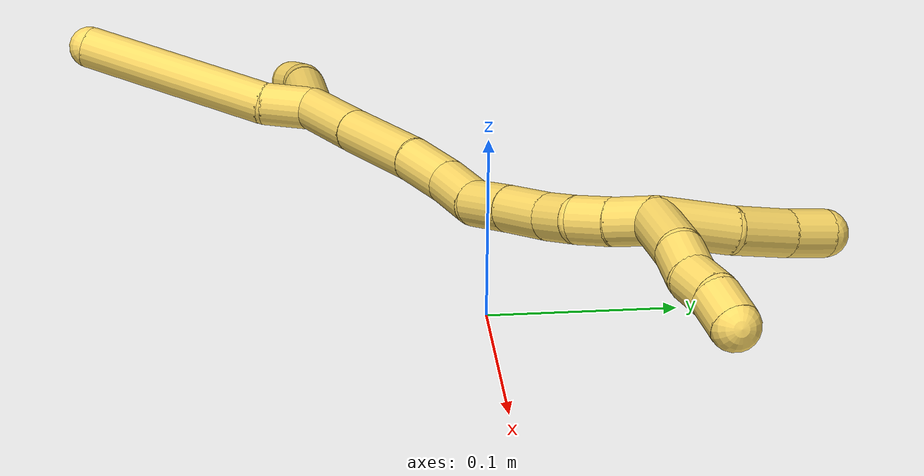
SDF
<sdf version="1.7">
 <world name="default">
  <model name="5">
   <static>0</static>
   <link name="5">
    <collision name="collision-cylinder-e_1_2_8">
     <pose>-0.01367 0.000795 0.005167 -0.152728 -1.20551 0.105213</pose>
     <geometry><cylinder><radius>0.0125</radius><length>0.029271</length></cylinder></geometry>
     <surface>
      <friction><ode><mu>1.16</mu><mu2>1.16</mu2><slip1>0</slip1><slip2>0</slip2></ode></friction>
      <contact><ode><kp>1e+06</kp><kd>1</kd><max_vel>0</max_vel><min_depth>0.001</min_depth></ode></contact>
     </surface>
    </collision>
    <visual name="visual-cylinder-e_1_2_8">
     <pose>-0.01367 0.000795 0.005167 -0.152728 -1.20551 0.105213</pose>
     <geometry><cylinder><radius>0.0125</radius><length>0.029271</length></cylinder></geometry>
     <material><ambient>1 0.858824 0.4 1</ambient></material>
    </visual>
    <collision name="collision-cylinder-e_2_8_6">
     <pose>-0.080444 -0.00688 0.037758 0.299608 -1.07529 -0.179502</pose>
     <geometry><cylinder><radius>0.0125</radius><length>0.120729</length></cylinder></geometry>
     <surface>
      <friction><ode><mu>1.16</mu><mu2>1.16</mu2><slip1>0</slip1><slip2>0</slip2></ode></friction>
      <contact><ode><kp>1e+06</kp><kd>1</kd><max_vel>0</max_vel><min_depth>0.001</min_depth></ode></contact>
     </surface>
    </collision>
    <visual name="visual-cylinder-e_2_8_6">
     <pose>-0.080444 -0.00688 0.037758 0.299608 -1.07529 -0.179502</pose>
     <geometry><cylinder><radius>0.0125</radius><length>0.120729</length></cylinder></geometry>
     <material><ambient>1 0.858824 0.4 1</ambient></material>
    </visual>
    <collision name="collision-cylinder-e_1_2_9">
     <pose>-0.000441 -0.005087 0.028628 0.175839 -0.01518 -0.001338</pose>
     <geometry><cylinder><radius>0.0125</radius><length>0.05816</length></cylinder></geometry>
     <surface>
      <friction><ode><mu>1.16</mu><mu2>1.16</mu2><slip1>0</slip1><slip2>0</slip2></ode></friction>
      <contact><ode><kp>1e+06</kp><kd>1</kd><max_vel>0</max_vel><min_depth>0.001</min_depth></ode></contact>
     </surface>
    </collision>
    <visual name="visual-cylinder-e_1_2_9">
     <pose>-0.000441 -0.005087 0.028628 0.175839 -0.01518 -0.001338</pose>
     <geometry><cylinder><radius>0.0125</radius><length>0.05816</length></cylinder></geometry>
     <material><ambient>1 0.858824 0.4 1</ambient></material>
    </visual>
    <collision name="collision-cylinder-e_2_9_10">
     <pose>-0.000651 -0.010733 0.067691 0.053566 0.022227 0.000595</pose>
     <geometry><cylinder><radius>0.0125</radius><length>0.020904</length></cylinder></geometry>
     <surface>
      <friction><ode><mu>1.16</mu><mu2>1.16</mu2><slip1>0</slip1><slip2>0</slip2></ode></friction>
      <contact><ode><kp>1e+06</kp><kd>1</kd><max_vel>0</max_vel><min_depth>0.001</min_depth></ode></contact>
     </surface>
    </collision>
    <visual name="visual-cylinder-e_2_9_10">
     <pose>-0.000651 -0.010733 0.067691 0.053566 0.022227 0.000595</pose>
     <geometry><cylinder><radius>0.0125</radius><length>0.020904</length></cylinder></geometry>
     <material><ambient>1 0.858824 0.4 1</ambient></material>
    </visual>
    <collision name="collision-cylinder-e_3_10_5">
     <pose>-0.003123 -0.011242 0.088238 -0.004975 -0.261331 0.000654</pose>
     <geometry><cylinder><radius>0.0125</radius><length>0.020935</length></cylinder></geometry>
     <surface>
      <friction><ode><mu>1.16</mu><mu2>1.16</mu2><slip1>0</slip1><slip2>0</slip2></ode></friction>
      <contact><ode><kp>1e+06</kp><kd>1</kd><max_vel>0</max_vel><min_depth>0.001</min_depth></ode></contact>
     </surface>
    </collision>
    <visual name="visual-cylinder-e_3_10_5">
     <pose>-0.003123 -0.011242 0.088238 -0.004975 -0.261331 0.000654</pose>
     <geometry><cylinder><radius>0.0125</radius><length>0.020935</length></cylinder></geometry>
     <material><ambient>1 0.858824 0.4 1</ambient></material>
    </visual>
    <collision name="collision-cylinder-e_1_2_11">
     <pose>0.011027 0.003806 -0.021622 -2.96736 0.465454 -2.43552</pose>
     <geometry><cylinder><radius>0.0125</radius><length>0.049135</length></cylinder></geometry>
     <surface>
      <friction><ode><mu>1.16</mu><mu2>1.16</mu2><slip1>0</slip1><slip2>0</slip2></ode></friction>
      <contact><ode><kp>1e+06</kp><kd>1</kd><max_vel>0</max_vel><min_depth>0.001</min_depth></ode></contact>
     </surface>
    </collision>
    <visual name="visual-cylinder-e_1_2_11">
     <pose>0.011027 0.003806 -0.021622 -2.96736 0.465454 -2.43552</pose>
     <geometry><cylinder><radius>0.0125</radius><length>0.049135</length></cylinder></geometry>
     <material><ambient>1 0.858824 0.4 1</ambient></material>
    </visual>
    <collision name="collision-cylinder-e_2_11_12">
     <pose>0.036219 0.011928 -0.068386 -2.97158 0.506904 -2.50595</pose>
     <geometry><cylinder><radius>0.0125</radius><length>0.058359</length></cylinder></geometry>
     <surface>
      <friction><ode><mu>1.16</mu><mu2>1.16</mu2><slip1>0</slip1><slip2>0</slip2></ode></friction>
      <contact><ode><kp>1e+06</kp><kd>1</kd><max_vel>0</max_vel><min_depth>0.001</min_depth></ode></contact>
     </surface>
    </collision>
    <visual name="visual-cylinder-e_2_11_12">
     <pose>0.036219 0.011928 -0.068386 -2.97158 0.506904 -2.50595</pose>
     <geometry><cylinder><radius>0.0125</radius><length>0.058359</length></cylinder></geometry>
     <material><ambient>1 0.858824 0.4 1</ambient></material>
    </visual>
    <collision name="collision-cylinder-e_3_12_13">
     <pose>0.058903 0.020222 -0.10744 -2.86307 0.53207 -2.1914</pose>
     <geometry><cylinder><radius>0.0125</radius><length>0.03358</length></cylinder></geometry>
     <surface>
      <friction><ode><mu>1.16</mu><mu2>1.16</mu2><slip1>0</slip1><slip2>0</slip2></ode></friction>
      <contact><ode><kp>1e+06</kp><kd>1</kd><max_vel>0</max_vel><min_depth>0.001</min_depth></ode></contact>
     </surface>
    </collision>
    <visual name="visual-cylinder-e_3_12_13">
     <pose>0.058903 0.020222 -0.10744 -2.86307 0.53207 -2.1914</pose>
     <geometry><cylinder><radius>0.0125</radius><length>0.03358</length></cylinder></geometry>
     <material><ambient>1 0.858824 0.4 1</ambient></material>
    </visual>
    <collision name="collision-cylinder-e_4_13_14">
     <pose>0.073026 0.02785 -0.135461 -2.88848 0.367161 -1.94003</pose>
     <geometry><cylinder><radius>0.0125</radius><length>0.03123</length></cylinder></geometry>
     <surface>
      <friction><ode><mu>1.16</mu><mu2>1.16</mu2><slip1>0</slip1><slip2>0</slip2></ode></friction>
      <contact><ode><kp>1e+06</kp><kd>1</kd><max_vel>0</max_vel><min_depth>0.001</min_depth></ode></contact>
     </surface>
    </collision>
    <visual name="visual-cylinder-e_4_13_14">
     <pose>0.073026 0.02785 -0.135461 -2.88848 0.367161 -1.94003</pose>
     <geometry><cylinder><radius>0.0125</radius><length>0.03123</length></cylinder></geometry>
     <material><ambient>1 0.858824 0.4 1</ambient></material>
    </visual>
    <collision name="collision-cylinder-e_5_14_15">
     <pose>0.085694 0.030801 -0.162713 3.08849 0.492545 2.93106</pose>
     <geometry><cylinder><radius>0.0125</radius><length>0.029871</length></cylinder></geometry>
     <surface>
      <friction><ode><mu>1.16</mu><mu2>1.16</mu2><slip1>0</slip1><slip2>0</slip2></ode></friction>
      <contact><ode><kp>1e+06</kp><kd>1</kd><max_vel>0</max_vel><min_depth>0.001</min_depth></ode></contact>
     </surface>
    </collision>
    <visual name="visual-cylinder-e_5_14_15">
     <pose>0.085694 0.030801 -0.162713 3.08849 0.492545 2.93106</pose>
     <geometry><cylinder><radius>0.0125</radius><length>0.029871</length></cylinder></geometry>
     <material><ambient>1 0.858824 0.4 1</ambient></material>
    </visual>
    <collision name="collision-cylinder-e_6_15_16">
     <pose>0.100687 0.029737 -0.189484 3.11476 0.526802 3.04217</pose>
     <geometry><cylinder><radius>0.0125</radius><length>0.031546</length></cylinder></geometry>
     <surface>
      <friction><ode><mu>1.16</mu><mu2>1.16</mu2><slip1>0</slip1><slip2>0</slip2></ode></friction>
      <contact><ode><kp>1e+06</kp><kd>1</kd><max_vel>0</max_vel><min_depth>0.001</min_depth></ode></contact>
     </surface>
    </collision>
    <visual name="visual-cylinder-e_6_15_16">
     <pose>0.100687 0.029737 -0.189484 3.11476 0.526802 3.04217</pose>
     <geometry><cylinder><radius>0.0125</radius><length>0.031546</length></cylinder></geometry>
     <material><ambient>1 0.858824 0.4 1</ambient></material>
    </visual>
    <collision name="collision-cylinder-e_7_16_17">
     <pose>0.113542 0.028504 -0.212524 3.04979 0.480465 2.77088</pose>
     <geometry><cylinder><radius>0.0125</radius><length>0.021313</length></cylinder></geometry>
     <surface>
      <friction><ode><mu>1.16</mu><mu2>1.16</mu2><slip1>0</slip1><slip2>0</slip2></ode></friction>
      <contact><ode><kp>1e+06</kp><kd>1</kd><max_vel>0</max_vel><min_depth>0.001</min_depth></ode></contact>
     </surface>
    </collision>
    <visual name="visual-cylinder-e_7_16_17">
     <pose>0.113542 0.028504 -0.212524 3.04979 0.480465 2.77088</pose>
     <geometry><cylinder><radius>0.0125</radius><length>0.021313</length></cylinder></geometry>
     <material><ambient>1 0.858824 0.4 1</ambient></material>
    </visual>
    <collision name="collision-cylinder-e_8_17_18">
     <pose>0.126086 0.026336 -0.229419 2.96927 0.786813 2.73123</pose>
     <geometry><cylinder><radius>0.0125</radius><length>0.021518</length></cylinder></geometry>
     <surface>
      <friction><ode><mu>1.16</mu><mu2>1.16</mu2><slip1>0</slip1><slip2>0</slip2></ode></friction>
      <contact><ode><kp>1e+06</kp><kd>1</kd><max_vel>0</max_vel><min_depth>0.001</min_depth></ode></contact>
     </surface>
    </collision>
    <visual name="visual-cylinder-e_8_17_18">
     <pose>0.126086 0.026336 -0.229419 2.96927 0.786813 2.73123</pose>
     <geometry><cylinder><radius>0.0125</radius><length>0.021518</length></cylinder></geometry>
     <material><ambient>1 0.858824 0.4 1</ambient></material>
    </visual>
    <collision name="collision-cylinder-e_9_18_1">
     <pose>0.142266 0.022738 -0.244577 2.85097 0.818669 2.49092</pose>
     <geometry><cylinder><radius>0.0125</radius><length>0.023447</length></cylinder></geometry>
     <surface>
      <friction><ode><mu>1.16</mu><mu2>1.16</mu2><slip1>0</slip1><slip2>0</slip2></ode></friction>
      <contact><ode><kp>1e+06</kp><kd>1</kd><max_vel>0</max_vel><min_depth>0.001</min_depth></ode></contact>
     </surface>
    </collision>
    <visual name="visual-cylinder-e_9_18_1">
     <pose>0.142266 0.022738 -0.244577 2.85097 0.818669 2.49092</pose>
     <geometry><cylinder><radius>0.0125</radius><length>0.023447</length></cylinder></geometry>
     <material><ambient>1 0.858824 0.4 1</ambient></material>
    </visual>
    <collision name="collision-cylinder-e_1_1_19">
     <pose>0.153199 0.025734 -0.2705 -2.85938 0.124207 -0.825245</pose>
     <geometry><cylinder><radius>0.0125</radius><length>0.038297</length></cylinder></geometry>
     <surface>
      <friction><ode><mu>1.16</mu><mu2>1.16</mu2><slip1>0</slip1><slip2>0</slip2></ode></friction>
      <contact><ode><kp>1e+06</kp><kd>1</kd><max_vel>0</max_vel><min_depth>0.001</min_depth></ode></contact>
     </surface>
    </collision>
    <visual name="visual-cylinder-e_1_1_19">
     <pose>0.153199 0.025734 -0.2705 -2.85938 0.124207 -0.825245</pose>
     <geometry><cylinder><radius>0.0125</radius><length>0.038297</length></cylinder></geometry>
     <material><ambient>1 0.858824 0.4 1</ambient></material>
    </visual>
    <collision name="collision-cylinder-e_2_19_20">
     <pose>0.157163 0.035954 -0.297651 -2.63599 0.155176 -0.584656</pose>
     <geometry><cylinder><radius>0.0125</radius><length>0.020598</length></cylinder></geometry>
     <surface>
      <friction><ode><mu>1.16</mu><mu2>1.16</mu2><slip1>0</slip1><slip2>0</slip2></ode></friction>
      <contact><ode><kp>1e+06</kp><kd>1</kd><max_vel>0</max_vel><min_depth>0.001</min_depth></ode></contact>
     </surface>
    </collision>
    <visual name="visual-cylinder-e_2_19_20">
     <pose>0.157163 0.035954 -0.297651 -2.63599 0.155176 -0.584656</pose>
     <geometry><cylinder><radius>0.0125</radius><length>0.020598</length></cylinder></geometry>
     <material><ambient>1 0.858824 0.4 1</ambient></material>
    </visual>
    <collision name="collision-cylinder-e_3_20_21">
     <pose>0.162356 0.043758 -0.315885 -2.84263 0.353347 -1.74012</pose>
     <geometry><cylinder><radius>0.0125</radius><length>0.020814</length></cylinder></geometry>
     <surface>
      <friction><ode><mu>1.16</mu><mu2>1.16</mu2><slip1>0</slip1><slip2>0</slip2></ode></friction>
      <contact><ode><kp>1e+06</kp><kd>1</kd><max_vel>0</max_vel><min_depth>0.001</min_depth></ode></contact>
     </surface>
    </collision>
    <visual name="visual-cylinder-e_3_20_21">
     <pose>0.162356 0.043758 -0.315885 -2.84263 0.353347 -1.74012</pose>
     <geometry><cylinder><radius>0.0125</radius><length>0.020814</length></cylinder></geometry>
     <material><ambient>1 0.858824 0.4 1</ambient></material>
    </visual>
    <collision name="collision-cylinder-e_4_21_4">
     <pose>0.169103 0.051717 -0.333413 -2.58655 0.315204 -1.01772</pose>
     <geometry><cylinder><radius>0.0125</radius><length>0.02029</length></cylinder></geometry>
     <surface>
      <friction><ode><mu>1.16</mu><mu2>1.16</mu2><slip1>0</slip1><slip2>0</slip2></ode></friction>
      <contact><ode><kp>1e+06</kp><kd>1</kd><max_vel>0</max_vel><min_depth>0.001</min_depth></ode></contact>
     </surface>
    </collision>
    <visual name="visual-cylinder-e_4_21_4">
     <pose>0.169103 0.051717 -0.333413 -2.58655 0.315204 -1.01772</pose>
     <geometry><cylinder><radius>0.0125</radius><length>0.02029</length></cylinder></geometry>
     <material><ambient>1 0.858824 0.4 1</ambient></material>
    </visual>
    <collision name="collision-cylinder-e_1_1_22">
     <pose>0.171247 0.020526 -0.248979 -0.025556 1.41189 -0.021786</pose>
     <geometry><cylinder><radius>0.0125</radius><length>0.041361</length></cylinder></geometry>
     <surface>
      <friction><ode><mu>1.16</mu><mu2>1.16</mu2><slip1>0</slip1><slip2>0</slip2></ode></friction>
      <contact><ode><kp>1e+06</kp><kd>1</kd><max_vel>0</max_vel><min_depth>0.001</min_depth></ode></contact>
     </surface>
    </collision>
    <visual name="visual-cylinder-e_1_1_22">
     <pose>0.171247 0.020526 -0.248979 -0.025556 1.41189 -0.021786</pose>
     <geometry><cylinder><radius>0.0125</radius><length>0.041361</length></cylinder></geometry>
     <material><ambient>1 0.858824 0.4 1</ambient></material>
    </visual>
    <collision name="collision-cylinder-e_2_22_23">
     <pose>0.207528 0.01995 -0.239133 0.100009 1.1761 0.06671</pose>
     <geometry><cylinder><radius>0.0125</radius><length>0.034366</length></cylinder></geometry>
     <surface>
      <friction><ode><mu>1.16</mu><mu2>1.16</mu2><slip1>0</slip1><slip2>0</slip2></ode></friction>
      <contact><ode><kp>1e+06</kp><kd>1</kd><max_vel>0</max_vel><min_depth>0.001</min_depth></ode></contact>
     </surface>
    </collision>
    <visual name="visual-cylinder-e_2_22_23">
     <pose>0.207528 0.01995 -0.239133 0.100009 1.1761 0.06671</pose>
     <geometry><cylinder><radius>0.0125</radius><length>0.034366</length></cylinder></geometry>
     <material><ambient>1 0.858824 0.4 1</ambient></material>
    </visual>
    <collision name="collision-cylinder-e_3_23_3">
     <pose>0.234852 0.018168 -0.22873 0.285126 1.23584 0.203341</pose>
     <geometry><cylinder><radius>0.0125</radius><length>0.024273</length></cylinder></geometry>
     <surface>
      <friction><ode><mu>1.16</mu><mu2>1.16</mu2><slip1>0</slip1><slip2>0</slip2></ode></friction>
      <contact><ode><kp>1e+06</kp><kd>1</kd><max_vel>0</max_vel><min_depth>0.001</min_depth></ode></contact>
     </surface>
    </collision>
    <visual name="visual-cylinder-e_3_23_3">
     <pose>0.234852 0.018168 -0.22873 0.285126 1.23584 0.203341</pose>
     <geometry><cylinder><radius>0.0125</radius><length>0.024273</length></cylinder></geometry>
     <material><ambient>1 0.858824 0.4 1</ambient></material>
    </visual>
    <collision name="collision-sphere-3">
     <pose>0.246314 0.017046 -0.224901 0 -0 0</pose>
     <geometry><sphere><radius>0.0125</radius></sphere></geometry>
     <surface>
      <friction><ode><mu>1.16</mu><mu2>1.16</mu2><slip1>0</slip1><slip2>0</slip2></ode></friction>
      <contact><ode><kp>1e+06</kp><kd>1</kd><max_vel>0</max_vel><min_depth>0.001</min_depth></ode></contact>
     </surface>
    </collision>
    <visual name="visual-sphere-3">
     <pose>0.246314 0.017046 -0.224901 0 -0 0</pose>
     <geometry><sphere><radius>0.0125</radius></sphere></geometry>
     <material><ambient>1 0.858824 0.4 1</ambient></material>
    </visual>
    <collision name="collision-sphere-23">
     <pose>0.22339 0.019291 -0.232559 0 -0 0</pose>
     <geometry><sphere><radius>0.0125</radius></sphere></geometry>
     <surface>
      <friction><ode><mu>1.16</mu><mu2>1.16</mu2><slip1>0</slip1><slip2>0</slip2></ode></friction>
      <contact><ode><kp>1e+06</kp><kd>1</kd><max_vel>0</max_vel><min_depth>0.001</min_depth></ode></contact>
     </surface>
    </collision>
    <visual name="visual-sphere-23">
     <pose>0.22339 0.019291 -0.232559 0 -0 0</pose>
     <geometry><sphere><radius>0.0125</radius></sphere></geometry>
     <material><ambient>1 0.858824 0.4 1</ambient></material>
    </visual>
    <collision name="collision-sphere-22">
     <pose>0.191667 0.02061 -0.245707 0 -0 0</pose>
     <geometry><sphere><radius>0.0125</radius></sphere></geometry>
     <surface>
      <friction><ode><mu>1.16</mu><mu2>1.16</mu2><slip1>0</slip1><slip2>0</slip2></ode></friction>
      <contact><ode><kp>1e+06</kp><kd>1</kd><max_vel>0</max_vel><min_depth>0.001</min_depth></ode></contact>
     </surface>
    </collision>
    <visual name="visual-sphere-22">
     <pose>0.191667 0.02061 -0.245707 0 -0 0</pose>
     <geometry><sphere><radius>0.0125</radius></sphere></geometry>
     <material><ambient>1 0.858824 0.4 1</ambient></material>
    </visual>
    <collision name="collision-sphere-4">
     <pose>0.172248 0.0568 -0.34161 0 -0 0</pose>
     <geometry><sphere><radius>0.0125</radius></sphere></geometry>
     <surface>
      <friction><ode><mu>1.16</mu><mu2>1.16</mu2><slip1>0</slip1><slip2>0</slip2></ode></friction>
      <contact><ode><kp>1e+06</kp><kd>1</kd><max_vel>0</max_vel><min_depth>0.001</min_depth></ode></contact>
     </surface>
    </collision>
    <visual name="visual-sphere-4">
     <pose>0.172248 0.0568 -0.34161 0 -0 0</pose>
     <geometry><sphere><radius>0.0125</radius></sphere></geometry>
     <material><ambient>1 0.858824 0.4 1</ambient></material>
    </visual>
    <collision name="collision-sphere-21">
     <pose>0.165958 0.046634 -0.325216 0 -0 0</pose>
     <geometry><sphere><radius>0.0125</radius></sphere></geometry>
     <surface>
      <friction><ode><mu>1.16</mu><mu2>1.16</mu2><slip1>0</slip1><slip2>0</slip2></ode></friction>
      <contact><ode><kp>1e+06</kp><kd>1</kd><max_vel>0</max_vel><min_depth>0.001</min_depth></ode></contact>
     </surface>
    </collision>
    <visual name="visual-sphere-21">
     <pose>0.165958 0.046634 -0.325216 0 -0 0</pose>
     <geometry><sphere><radius>0.0125</radius></sphere></geometry>
     <material><ambient>1 0.858824 0.4 1</ambient></material>
    </visual>
    <collision name="collision-sphere-20">
     <pose>0.158755 0.040882 -0.306554 0 -0 0</pose>
     <geometry><sphere><radius>0.0125</radius></sphere></geometry>
     <surface>
      <friction><ode><mu>1.16</mu><mu2>1.16</mu2><slip1>0</slip1><slip2>0</slip2></ode></friction>
      <contact><ode><kp>1e+06</kp><kd>1</kd><max_vel>0</max_vel><min_depth>0.001</min_depth></ode></contact>
     </surface>
    </collision>
    <visual name="visual-sphere-20">
     <pose>0.158755 0.040882 -0.306554 0 -0 0</pose>
     <geometry><sphere><radius>0.0125</radius></sphere></geometry>
     <material><ambient>1 0.858824 0.4 1</ambient></material>
    </visual>
    <collision name="collision-sphere-5">
     <pose>-0.005827 -0.011191 0.09835 0 -0 0</pose>
     <geometry><sphere><radius>0.0125</radius></sphere></geometry>
     <surface>
      <friction><ode><mu>1.16</mu><mu2>1.16</mu2><slip1>0</slip1><slip2>0</slip2></ode></friction>
      <contact><ode><kp>1e+06</kp><kd>1</kd><max_vel>0</max_vel><min_depth>0.001</min_depth></ode></contact>
     </surface>
    </collision>
    <visual name="visual-sphere-5">
     <pose>-0.005827 -0.011191 0.09835 0 -0 0</pose>
     <geometry><sphere><radius>0.0125</radius></sphere></geometry>
     <material><ambient>1 0.858824 0.4 1</ambient></material>
    </visual>
    <collision name="collision-sphere-10">
     <pose>-0.000418 -0.011292 0.078126 0 -0 0</pose>
     <geometry><sphere><radius>0.0125</radius></sphere></geometry>
     <surface>
      <friction><ode><mu>1.16</mu><mu2>1.16</mu2><slip1>0</slip1><slip2>0</slip2></ode></friction>
      <contact><ode><kp>1e+06</kp><kd>1</kd><max_vel>0</max_vel><min_depth>0.001</min_depth></ode></contact>
     </surface>
    </collision>
    <visual name="visual-sphere-10">
     <pose>-0.000418 -0.011292 0.078126 0 -0 0</pose>
     <geometry><sphere><radius>0.0125</radius></sphere></geometry>
     <material><ambient>1 0.858824 0.4 1</ambient></material>
    </visual>
    <collision name="collision-sphere-6">
     <pose>-0.133549 -0.015352 0.065181 0 -0 0</pose>
     <geometry><sphere><radius>0.0125</radius></sphere></geometry>
     <surface>
      <friction><ode><mu>1.16</mu><mu2>1.16</mu2><slip1>0</slip1><slip2>0</slip2></ode></friction>
      <contact><ode><kp>1e+06</kp><kd>1</kd><max_vel>0</max_vel><min_depth>0.001</min_depth></ode></contact>
     </surface>
    </collision>
    <visual name="visual-sphere-6">
     <pose>-0.133549 -0.015352 0.065181 0 -0 0</pose>
     <geometry><sphere><radius>0.0125</radius></sphere></geometry>
     <material><ambient>1 0.858824 0.4 1</ambient></material>
    </visual>
    <collision name="collision-sphere-9">
     <pose>-0.000883 -0.010173 0.057257 0 -0 0</pose>
     <geometry><sphere><radius>0.0125</radius></sphere></geometry>
     <surface>
      <friction><ode><mu>1.16</mu><mu2>1.16</mu2><slip1>0</slip1><slip2>0</slip2></ode></friction>
      <contact><ode><kp>1e+06</kp><kd>1</kd><max_vel>0</max_vel><min_depth>0.001</min_depth></ode></contact>
     </surface>
    </collision>
    <visual name="visual-sphere-9">
     <pose>-0.000883 -0.010173 0.057257 0 -0 0</pose>
     <geometry><sphere><radius>0.0125</radius></sphere></geometry>
     <material><ambient>1 0.858824 0.4 1</ambient></material>
    </visual>
    <collision name="collision-sphere-2">
     <geometry><sphere><radius>0.0125</radius></sphere></geometry>
     <surface>
      <friction><ode><mu>1.16</mu><mu2>1.16</mu2><slip1>0</slip1><slip2>0</slip2></ode></friction>
      <contact><ode><kp>1e+06</kp><kd>1</kd><max_vel>0</max_vel><min_depth>0.001</min_depth></ode></contact>
     </surface>
    </collision>
    <visual name="visual-sphere-2">
     <geometry><sphere><radius>0.0125</radius></sphere></geometry>
     <material><ambient>1 0.858824 0.4 1</ambient></material>
    </visual>
    <collision name="collision-sphere-19">
     <pose>0.155571 0.031026 -0.288749 0 -0 0</pose>
     <geometry><sphere><radius>0.0125</radius></sphere></geometry>
     <surface>
      <friction><ode><mu>1.16</mu><mu2>1.16</mu2><slip1>0</slip1><slip2>0</slip2></ode></friction>
      <contact><ode><kp>1e+06</kp><kd>1</kd><max_vel>0</max_vel><min_depth>0.001</min_depth></ode></contact>
     </surface>
    </collision>
    <visual name="visual-sphere-19">
     <pose>0.155571 0.031026 -0.288749 0 -0 0</pose>
     <geometry><sphere><radius>0.0125</radius></sphere></geometry>
     <material><ambient>1 0.858824 0.4 1</ambient></material>
    </visual>
    <collision name="collision-sphere-8">
     <pose>-0.02734 0.001591 0.010334 0 -0 0</pose>
     <geometry><sphere><radius>0.0125</radius></sphere></geometry>
     <surface>
      <friction><ode><mu>1.16</mu><mu2>1.16</mu2><slip1>0</slip1><slip2>0</slip2></ode></friction>
      <contact><ode><kp>1e+06</kp><kd>1</kd><max_vel>0</max_vel><min_depth>0.001</min_depth></ode></contact>
     </surface>
    </collision>
    <visual name="visual-sphere-8">
     <pose>-0.02734 0.001591 0.010334 0 -0 0</pose>
     <geometry><sphere><radius>0.0125</radius></sphere></geometry>
     <material><ambient>1 0.858824 0.4 1</ambient></material>
    </visual>
    <collision name="collision-sphere-11">
     <pose>0.022053 0.007611 -0.043243 0 -0 0</pose>
     <geometry><sphere><radius>0.0125</radius></sphere></geometry>
     <surface>
      <friction><ode><mu>1.16</mu><mu2>1.16</mu2><slip1>0</slip1><slip2>0</slip2></ode></friction>
      <contact><ode><kp>1e+06</kp><kd>1</kd><max_vel>0</max_vel><min_depth>0.001</min_depth></ode></contact>
     </surface>
    </collision>
    <visual name="visual-sphere-11">
     <pose>0.022053 0.007611 -0.043243 0 -0 0</pose>
     <geometry><sphere><radius>0.0125</radius></sphere></geometry>
     <material><ambient>1 0.858824 0.4 1</ambient></material>
    </visual>
    <collision name="collision-sphere-12">
     <pose>0.050385 0.016244 -0.093528 0 -0 0</pose>
     <geometry><sphere><radius>0.0125</radius></sphere></geometry>
     <surface>
      <friction><ode><mu>1.16</mu><mu2>1.16</mu2><slip1>0</slip1><slip2>0</slip2></ode></friction>
      <contact><ode><kp>1e+06</kp><kd>1</kd><max_vel>0</max_vel><min_depth>0.001</min_depth></ode></contact>
     </surface>
    </collision>
    <visual name="visual-sphere-12">
     <pose>0.050385 0.016244 -0.093528 0 -0 0</pose>
     <geometry><sphere><radius>0.0125</radius></sphere></geometry>
     <material><ambient>1 0.858824 0.4 1</ambient></material>
    </visual>
    <collision name="collision-sphere-13">
     <pose>0.067421 0.0242 -0.121351 0 -0 0</pose>
     <geometry><sphere><radius>0.0125</radius></sphere></geometry>
     <surface>
      <friction><ode><mu>1.16</mu><mu2>1.16</mu2><slip1>0</slip1><slip2>0</slip2></ode></friction>
      <contact><ode><kp>1e+06</kp><kd>1</kd><max_vel>0</max_vel><min_depth>0.001</min_depth></ode></contact>
     </surface>
    </collision>
    <visual name="visual-sphere-13">
     <pose>0.067421 0.0242 -0.121351 0 -0 0</pose>
     <geometry><sphere><radius>0.0125</radius></sphere></geometry>
     <material><ambient>1 0.858824 0.4 1</ambient></material>
    </visual>
    <collision name="collision-sphere-14">
     <pose>0.078632 0.031499 -0.149571 0 -0 0</pose>
     <geometry><sphere><radius>0.0125</radius></sphere></geometry>
     <surface>
      <friction><ode><mu>1.16</mu><mu2>1.16</mu2><slip1>0</slip1><slip2>0</slip2></ode></friction>
      <contact><ode><kp>1e+06</kp><kd>1</kd><max_vel>0</max_vel><min_depth>0.001</min_depth></ode></contact>
     </surface>
    </collision>
    <visual name="visual-sphere-14">
     <pose>0.078632 0.031499 -0.149571 0 -0 0</pose>
     <geometry><sphere><radius>0.0125</radius></sphere></geometry>
     <material><ambient>1 0.858824 0.4 1</ambient></material>
    </visual>
    <collision name="collision-sphere-15">
     <pose>0.092757 0.030102 -0.175854 0 -0 0</pose>
     <geometry><sphere><radius>0.0125</radius></sphere></geometry>
     <surface>
      <friction><ode><mu>1.16</mu><mu2>1.16</mu2><slip1>0</slip1><slip2>0</slip2></ode></friction>
      <contact><ode><kp>1e+06</kp><kd>1</kd><max_vel>0</max_vel><min_depth>0.001</min_depth></ode></contact>
     </surface>
    </collision>
    <visual name="visual-sphere-15">
     <pose>0.092757 0.030102 -0.175854 0 -0 0</pose>
     <geometry><sphere><radius>0.0125</radius></sphere></geometry>
     <material><ambient>1 0.858824 0.4 1</ambient></material>
    </visual>
    <collision name="collision-sphere-16">
     <pose>0.108617 0.029371 -0.203114 0 -0 0</pose>
     <geometry><sphere><radius>0.0125</radius></sphere></geometry>
     <surface>
      <friction><ode><mu>1.16</mu><mu2>1.16</mu2><slip1>0</slip1><slip2>0</slip2></ode></friction>
      <contact><ode><kp>1e+06</kp><kd>1</kd><max_vel>0</max_vel><min_depth>0.001</min_depth></ode></contact>
     </surface>
    </collision>
    <visual name="visual-sphere-16">
     <pose>0.108617 0.029371 -0.203114 0 -0 0</pose>
     <geometry><sphere><radius>0.0125</radius></sphere></geometry>
     <material><ambient>1 0.858824 0.4 1</ambient></material>
    </visual>
    <collision name="collision-sphere-17">
     <pose>0.118468 0.027638 -0.221934 0 -0 0</pose>
     <geometry><sphere><radius>0.0125</radius></sphere></geometry>
     <surface>
      <friction><ode><mu>1.16</mu><mu2>1.16</mu2><slip1>0</slip1><slip2>0</slip2></ode></friction>
      <contact><ode><kp>1e+06</kp><kd>1</kd><max_vel>0</max_vel><min_depth>0.001</min_depth></ode></contact>
     </surface>
    </collision>
    <visual name="visual-sphere-17">
     <pose>0.118468 0.027638 -0.221934 0 -0 0</pose>
     <geometry><sphere><radius>0.0125</radius></sphere></geometry>
     <material><ambient>1 0.858824 0.4 1</ambient></material>
    </visual>
    <collision name="collision-sphere-18">
     <pose>0.133705 0.025033 -0.236903 0 -0 0</pose>
     <geometry><sphere><radius>0.0125</radius></sphere></geometry>
     <surface>
      <friction><ode><mu>1.16</mu><mu2>1.16</mu2><slip1>0</slip1><slip2>0</slip2></ode></friction>
      <contact><ode><kp>1e+06</kp><kd>1</kd><max_vel>0</max_vel><min_depth>0.001</min_depth></ode></contact>
     </surface>
    </collision>
    <visual name="visual-sphere-18">
     <pose>0.133705 0.025033 -0.236903 0 -0 0</pose>
     <geometry><sphere><radius>0.0125</radius></sphere></geometry>
     <material><ambient>1 0.858824 0.4 1</ambient></material>
    </visual>
    <collision name="collision-sphere-1">
     <pose>0.150827 0.020443 -0.25225 0 -0 0</pose>
     <geometry><sphere><radius>0.0125</radius></sphere></geometry>
     <surface>
      <friction><ode><mu>1.16</mu><mu2>1.16</mu2><slip1>0</slip1><slip2>0</slip2></ode></friction>
      <contact><ode><kp>1e+06</kp><kd>1</kd><max_vel>0</max_vel><min_depth>0.001</min_depth></ode></contact>
     </surface>
    </collision>
    <visual name="visual-sphere-1">
     <pose>0.150827 0.020443 -0.25225 0 -0 0</pose>
     <geometry><sphere><radius>0.0125</radius></sphere></geometry>
     <material><ambient>1 0.858824 0.4 1</ambient></material>
    </visual>
    <inertial>
     <pose>0.06231 0.013462 -0.110922 0 -0 0</pose>
     <mass>0.75</mass>
     <inertia><ixx>3.8e-05</ixx><ixy>0</ixy><ixz>0</ixz><iyy>0.000187</iyy><iyz>0</iyz><izz>0.0001</izz></inertia>
    </inertial>
   </link>
   <pose>-0.201253 -0.081516 0.034146 -1.92352 0.18628 1.56484</pose>
  </model>
 </world>
</sdf>
